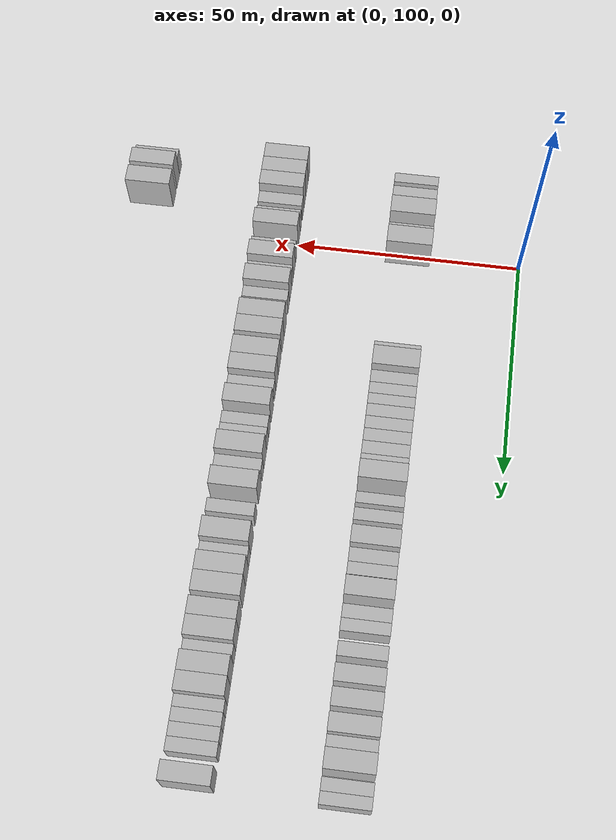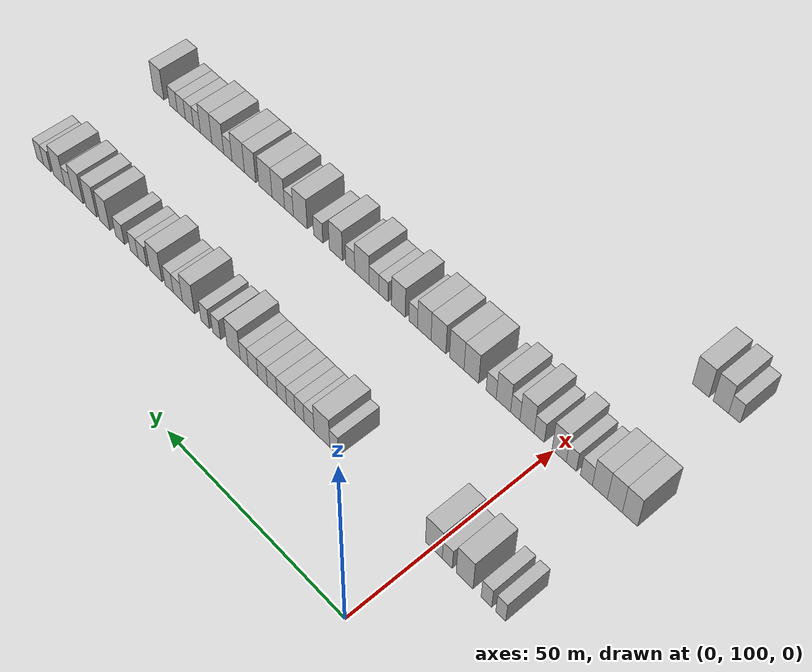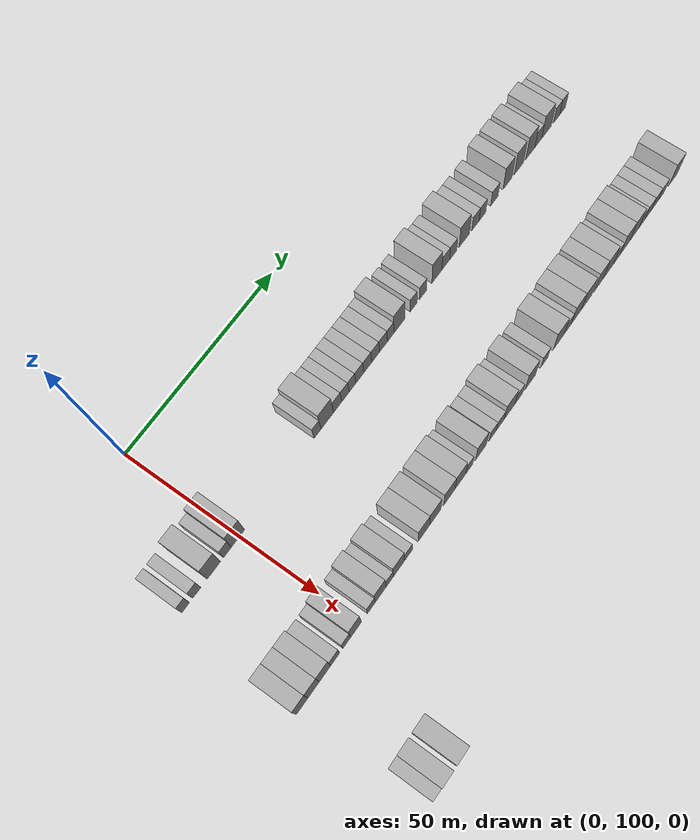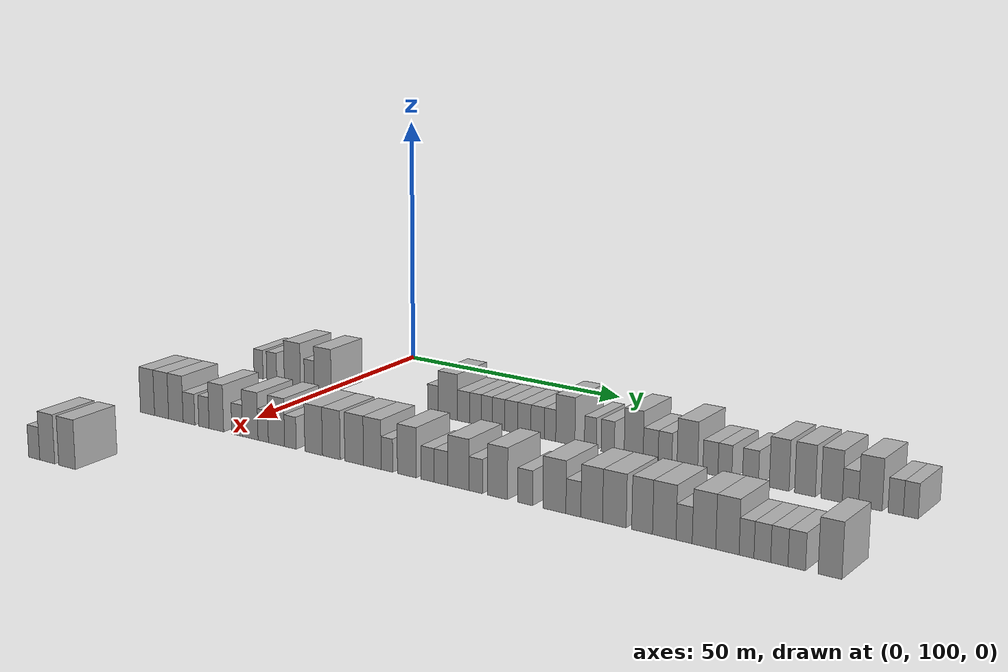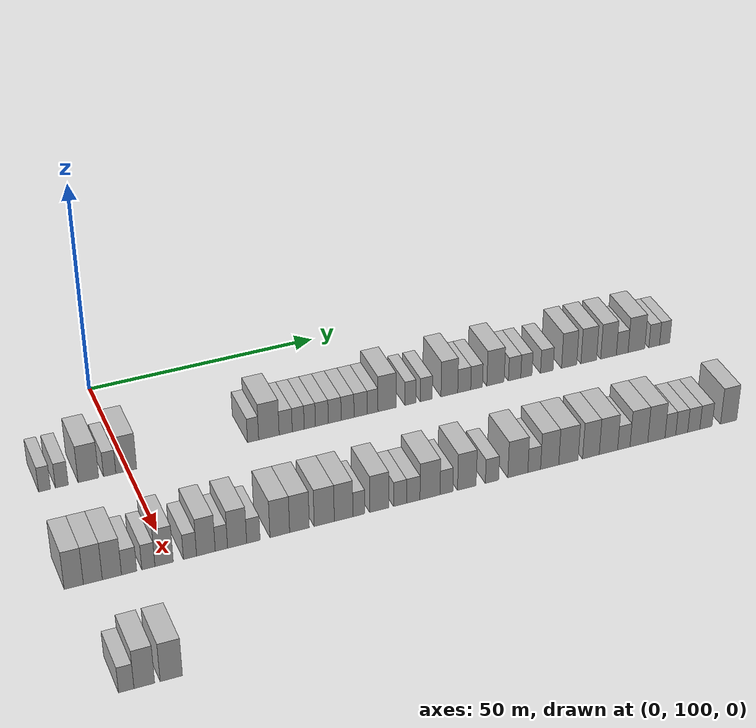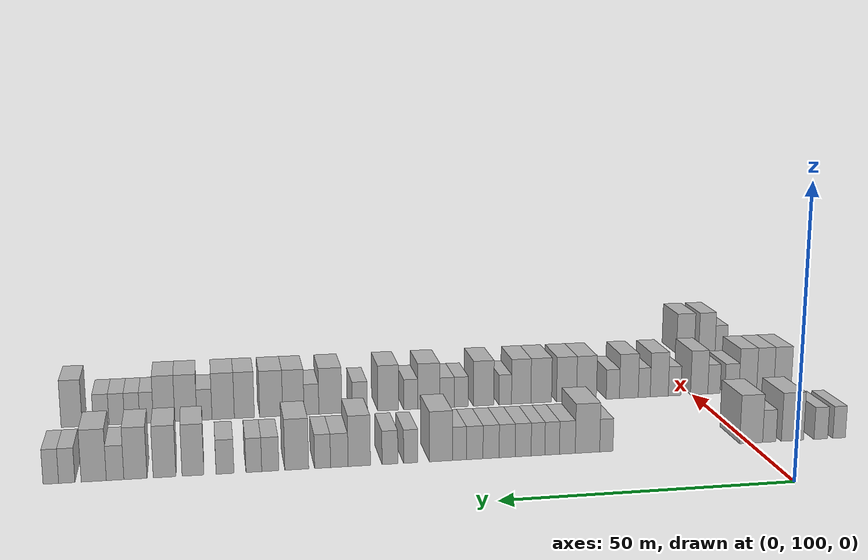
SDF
<sdf version="1.6">
 <world name="default">
  <model name="building_137">
   <static>1</static>
   <pose>25.0000 82.8842 0 0.000000 0.000000 0.000000</pose>
   <link name="link">
    <pose>0 0 3.00 0 0 0</pose>
    <collision name="collision"><geometry><box><size>10.0000 2.4114 6.0000</size></box></geometry></collision>
    <visual name="visual">
     <cast_shadows>0</cast_shadows>
     <geometry><box><size>10.0000 2.4114 6.0000</size></box></geometry>
     <material>
      <script>
       <uri>model://HANNAS_wall/materials/scripts</uri>
       <uri>model://HANNAS_wall/materials/textures</uri>
       <name>vrc/HANNAS_wall</name>
      </script>
     </material>
    </visual>
   </link>
  </model>
  <model name="building_138">
   <static>1</static>
   <pose>25.0000 86.3957 0 0.000000 0.000000 0.000000</pose>
   <link name="link">
    <pose>0 0 3.00 0 0 0</pose>
    <collision name="collision"><geometry><box><size>10.0000 2.6116 6.0000</size></box></geometry></collision>
    <visual name="visual">
     <cast_shadows>0</cast_shadows>
     <geometry><box><size>10.0000 2.6116 6.0000</size></box></geometry>
     <material>
      <script>
       <uri>model://HANNAS_wall/materials/scripts</uri>
       <uri>model://HANNAS_wall/materials/textures</uri>
       <name>vrc/HANNAS_wall</name>
      </script>
     </material>
    </visual>
   </link>
  </model>
  <model name="building_139">
   <static>1</static>
   <pose>25.0000 91.8095 0 0.000000 0.000000 0.000000</pose>
   <link name="link">
    <pose>0 0 4.50 0 0 0</pose>
    <collision name="collision"><geometry><box><size>10.0000 4.2160 9.0000</size></box></geometry></collision>
    <visual name="visual">
     <cast_shadows>0</cast_shadows>
     <geometry><box><size>10.0000 4.2160 9.0000</size></box></geometry>
     <material>
      <script>
       <uri>model://HANNAS_wall/materials/scripts</uri>
       <uri>model://HANNAS_wall/materials/textures</uri>
       <name>vrc/HANNAS_wall</name>
      </script>
     </material>
    </visual>
   </link>
  </model>
  <model name="building_140">
   <static>1</static>
   <pose>25.0000 96.1859 0 0.000000 0.000000 0.000000</pose>
   <link name="link">
    <pose>0 0 3.00 0 0 0</pose>
    <collision name="collision"><geometry><box><size>10.0000 2.5368 6.0000</size></box></geometry></collision>
    <visual name="visual">
     <cast_shadows>0</cast_shadows>
     <geometry><box><size>10.0000 2.5368 6.0000</size></box></geometry>
     <material>
      <script>
       <uri>model://HANNAS_wall/materials/scripts</uri>
       <uri>model://HANNAS_wall/materials/textures</uri>
       <name>vrc/HANNAS_wall</name>
      </script>
     </material>
    </visual>
   </link>
  </model>
  <model name="building_141">
   <static>1</static>
   <pose>25.0000 99.6122 0 0.000000 0.000000 0.000000</pose>
   <link name="link">
    <pose>0 0 4.50 0 0 0</pose>
    <collision name="collision"><geometry><box><size>10.0000 4.3158 9.0000</size></box></geometry></collision>
    <visual name="visual">
     <cast_shadows>0</cast_shadows>
     <geometry><box><size>10.0000 4.3158 9.0000</size></box></geometry>
     <material>
      <script>
       <uri>model://HANNAS_wall/materials/scripts</uri>
       <uri>model://HANNAS_wall/materials/textures</uri>
       <name>vrc/HANNAS_wall</name>
      </script>
     </material>
    </visual>
   </link>
  </model>
  <model name="building_142">
   <static>1</static>
   <pose>25.0000 126.3989 0 0.000000 0.000000 0.000000</pose>
   <link name="link">
    <pose>0 0 3.00 0 0 0</pose>
    <collision name="collision"><geometry><box><size>10.0000 2.4192 6.0000</size></box></geometry></collision>
    <visual name="visual">
     <cast_shadows>0</cast_shadows>
     <geometry><box><size>10.0000 2.4192 6.0000</size></box></geometry>
     <material>
      <script>
       <uri>model://HANNAS_wall/materials/scripts</uri>
       <uri>model://HANNAS_wall/materials/textures</uri>
       <name>vrc/HANNAS_wall</name>
      </script>
     </material>
    </visual>
   </link>
  </model>
  <model name="building_143">
   <static>1</static>
   <pose>25.0000 129.8212 0 0.000000 0.000000 0.000000</pose>
   <link name="link">
    <pose>0 0 4.50 0 0 0</pose>
    <collision name="collision"><geometry><box><size>10.0000 4.4254 9.0000</size></box></geometry></collision>
    <visual name="visual">
     <cast_shadows>0</cast_shadows>
     <geometry><box><size>10.0000 4.4254 9.0000</size></box></geometry>
     <material>
      <script>
       <uri>model://HANNAS_wall/materials/scripts</uri>
       <uri>model://HANNAS_wall/materials/textures</uri>
       <name>vrc/HANNAS_wall</name>
      </script>
     </material>
    </visual>
   </link>
  </model>
  <model name="building_144">
   <static>1</static>
   <pose>25.0000 133.4609 0 0.000000 0.000000 0.000000</pose>
   <link name="link">
    <pose>0 0 3.00 0 0 0</pose>
    <collision name="collision"><geometry><box><size>10.0000 2.8540 6.0000</size></box></geometry></collision>
    <visual name="visual">
     <cast_shadows>0</cast_shadows>
     <geometry><box><size>10.0000 2.8540 6.0000</size></box></geometry>
     <material>
      <script>
       <uri>model://HANNAS_wall/materials/scripts</uri>
       <uri>model://HANNAS_wall/materials/textures</uri>
       <name>vrc/HANNAS_wall</name>
      </script>
     </material>
    </visual>
   </link>
  </model>
  <model name="building_145">
   <static>1</static>
   <pose>25.0000 136.1914 0 0.000000 0.000000 0.000000</pose>
   <link name="link">
    <pose>0 0 3.00 0 0 0</pose>
    <collision name="collision"><geometry><box><size>10.0000 2.6069 6.0000</size></box></geometry></collision>
    <visual name="visual">
     <cast_shadows>0</cast_shadows>
     <geometry><box><size>10.0000 2.6069 6.0000</size></box></geometry>
     <material>
      <script>
       <uri>model://HANNAS_wall/materials/scripts</uri>
       <uri>model://HANNAS_wall/materials/textures</uri>
       <name>vrc/HANNAS_wall</name>
      </script>
     </material>
    </visual>
   </link>
  </model>
  <model name="building_146">
   <static>1</static>
   <pose>25.0000 138.7229 0 0.000000 0.000000 0.000000</pose>
   <link name="link">
    <pose>0 0 3.00 0 0 0</pose>
    <collision name="collision"><geometry><box><size>10.0000 2.4561 6.0000</size></box></geometry></collision>
    <visual name="visual">
     <cast_shadows>0</cast_shadows>
     <geometry><box><size>10.0000 2.4561 6.0000</size></box></geometry>
     <material>
      <script>
       <uri>model://HANNAS_wall/materials/scripts</uri>
       <uri>model://HANNAS_wall/materials/textures</uri>
       <name>vrc/HANNAS_wall</name>
      </script>
     </material>
    </visual>
   </link>
  </model>
  <model name="building_147">
   <static>1</static>
   <pose>25.0000 141.3669 0 0.000000 0.000000 0.000000</pose>
   <link name="link">
    <pose>0 0 3.00 0 0 0</pose>
    <collision name="collision"><geometry><box><size>10.0000 2.8319 6.0000</size></box></geometry></collision>
    <visual name="visual">
     <cast_shadows>0</cast_shadows>
     <geometry><box><size>10.0000 2.8319 6.0000</size></box></geometry>
     <material>
      <script>
       <uri>model://HANNAS_wall/materials/scripts</uri>
       <uri>model://HANNAS_wall/materials/textures</uri>
       <name>vrc/HANNAS_wall</name>
      </script>
     </material>
    </visual>
   </link>
  </model>
  <model name="building_148">
   <static>1</static>
   <pose>25.0000 144.2054 0 0.000000 0.000000 0.000000</pose>
   <link name="link">
    <pose>0 0 3.00 0 0 0</pose>
    <collision name="collision"><geometry><box><size>10.0000 2.8450 6.0000</size></box></geometry></collision>
    <visual name="visual">
     <cast_shadows>0</cast_shadows>
     <geometry><box><size>10.0000 2.8450 6.0000</size></box></geometry>
     <material>
      <script>
       <uri>model://HANNAS_wall/materials/scripts</uri>
       <uri>model://HANNAS_wall/materials/textures</uri>
       <name>vrc/HANNAS_wall</name>
      </script>
     </material>
    </visual>
   </link>
  </model>
  <model name="building_149">
   <static>1</static>
   <pose>25.0000 147.0546 0 0.000000 0.000000 0.000000</pose>
   <link name="link">
    <pose>0 0 3.00 0 0 0</pose>
    <collision name="collision"><geometry><box><size>10.0000 2.8535 6.0000</size></box></geometry></collision>
    <visual name="visual">
     <cast_shadows>0</cast_shadows>
     <geometry><box><size>10.0000 2.8535 6.0000</size></box></geometry>
     <material>
      <script>
       <uri>model://HANNAS_wall/materials/scripts</uri>
       <uri>model://HANNAS_wall/materials/textures</uri>
       <name>vrc/HANNAS_wall</name>
      </script>
     </material>
    </visual>
   </link>
  </model>
  <model name="building_150">
   <static>1</static>
   <pose>25.0000 149.9431 0 0.000000 0.000000 0.000000</pose>
   <link name="link">
    <pose>0 0 3.00 0 0 0</pose>
    <collision name="collision"><geometry><box><size>10.0000 2.9235 6.0000</size></box></geometry></collision>
    <visual name="visual">
     <cast_shadows>0</cast_shadows>
     <geometry><box><size>10.0000 2.9235 6.0000</size></box></geometry>
     <material>
      <script>
       <uri>model://HANNAS_wall/materials/scripts</uri>
       <uri>model://HANNAS_wall/materials/textures</uri>
       <name>vrc/HANNAS_wall</name>
      </script>
     </material>
    </visual>
   </link>
  </model>
  <model name="building_151">
   <static>1</static>
   <pose>25.0000 152.6162 0 0.000000 0.000000 0.000000</pose>
   <link name="link">
    <pose>0 0 3.00 0 0 0</pose>
    <collision name="collision"><geometry><box><size>10.0000 2.4228 6.0000</size></box></geometry></collision>
    <visual name="visual">
     <cast_shadows>0</cast_shadows>
     <geometry><box><size>10.0000 2.4228 6.0000</size></box></geometry>
     <material>
      <script>
       <uri>model://HANNAS_wall/materials/scripts</uri>
       <uri>model://HANNAS_wall/materials/textures</uri>
       <name>vrc/HANNAS_wall</name>
      </script>
     </material>
    </visual>
   </link>
  </model>
  <model name="building_152">
   <static>1</static>
   <pose>25.0000 155.8525 0 0.000000 0.000000 0.000000</pose>
   <link name="link">
    <pose>0 0 4.50 0 0 0</pose>
    <collision name="collision"><geometry><box><size>10.0000 4.0497 9.0000</size></box></geometry></collision>
    <visual name="visual">
     <cast_shadows>0</cast_shadows>
     <geometry><box><size>10.0000 4.0497 9.0000</size></box></geometry>
     <material>
      <script>
       <uri>model://HANNAS_wall/materials/scripts</uri>
       <uri>model://HANNAS_wall/materials/textures</uri>
       <name>vrc/HANNAS_wall</name>
      </script>
     </material>
    </visual>
   </link>
  </model>
  <model name="building_153">
   <static>1</static>
   <pose>25.0000 161.1162 0 0.000000 0.000000 0.000000</pose>
   <link name="link">
    <pose>0 0 3.00 0 0 0</pose>
    <collision name="collision"><geometry><box><size>10.0000 2.4779 6.0000</size></box></geometry></collision>
    <visual name="visual">
     <cast_shadows>0</cast_shadows>
     <geometry><box><size>10.0000 2.4779 6.0000</size></box></geometry>
     <material>
      <script>
       <uri>model://HANNAS_wall/materials/scripts</uri>
       <uri>model://HANNAS_wall/materials/textures</uri>
       <name>vrc/HANNAS_wall</name>
      </script>
     </material>
    </visual>
   </link>
  </model>
  <model name="building_154">
   <static>1</static>
   <pose>25.0000 164.7132 0 0.000000 0.000000 0.000000</pose>
   <link name="link">
    <pose>0 0 3.00 0 0 0</pose>
    <collision name="collision"><geometry><box><size>10.0000 2.7159 6.0000</size></box></geometry></collision>
    <visual name="visual">
     <cast_shadows>0</cast_shadows>
     <geometry><box><size>10.0000 2.7159 6.0000</size></box></geometry>
     <material>
      <script>
       <uri>model://HANNAS_wall/materials/scripts</uri>
       <uri>model://HANNAS_wall/materials/textures</uri>
       <name>vrc/HANNAS_wall</name>
      </script>
     </material>
    </visual>
   </link>
  </model>
  <model name="building_155">
   <static>1</static>
   <pose>25.0000 169.9870 0 0.000000 0.000000 0.000000</pose>
   <link name="link">
    <pose>0 0 4.50 0 0 0</pose>
    <collision name="collision"><geometry><box><size>10.0000 3.8317 9.0000</size></box></geometry></collision>
    <visual name="visual">
     <cast_shadows>0</cast_shadows>
     <geometry><box><size>10.0000 3.8317 9.0000</size></box></geometry>
     <material>
      <script>
       <uri>model://HANNAS_wall/materials/scripts</uri>
       <uri>model://HANNAS_wall/materials/textures</uri>
       <name>vrc/HANNAS_wall</name>
      </script>
     </material>
    </visual>
   </link>
  </model>
  <model name="building_156">
   <static>1</static>
   <pose>25.0000 173.3988 0 0.000000 0.000000 0.000000</pose>
   <link name="link">
    <pose>0 0 3.00 0 0 0</pose>
    <collision name="collision"><geometry><box><size>10.0000 2.9920 6.0000</size></box></geometry></collision>
    <visual name="visual">
     <cast_shadows>0</cast_shadows>
     <geometry><box><size>10.0000 2.9920 6.0000</size></box></geometry>
     <material>
      <script>
       <uri>model://HANNAS_wall/materials/scripts</uri>
       <uri>model://HANNAS_wall/materials/textures</uri>
       <name>vrc/HANNAS_wall</name>
      </script>
     </material>
    </visual>
   </link>
  </model>
  <model name="building_157">
   <static>1</static>
   <pose>25.0000 176.2500 0 0.000000 0.000000 0.000000</pose>
   <link name="link">
    <pose>0 0 3.00 0 0 0</pose>
    <collision name="collision"><geometry><box><size>10.0000 2.7104 6.0000</size></box></geometry></collision>
    <visual name="visual">
     <cast_shadows>0</cast_shadows>
     <geometry><box><size>10.0000 2.7104 6.0000</size></box></geometry>
     <material>
      <script>
       <uri>model://HANNAS_wall/materials/scripts</uri>
       <uri>model://HANNAS_wall/materials/textures</uri>
       <name>vrc/HANNAS_wall</name>
      </script>
     </material>
    </visual>
   </link>
  </model>
  <model name="building_158">
   <static>1</static>
   <pose>25.0000 180.6193 0 0.000000 0.000000 0.000000</pose>
   <link name="link">
    <pose>0 0 4.50 0 0 0</pose>
    <collision name="collision"><geometry><box><size>10.0000 4.0283 9.0000</size></box></geometry></collision>
    <visual name="visual">
     <cast_shadows>0</cast_shadows>
     <geometry><box><size>10.0000 4.0283 9.0000</size></box></geometry>
     <material>
      <script>
       <uri>model://HANNAS_wall/materials/scripts</uri>
       <uri>model://HANNAS_wall/materials/textures</uri>
       <name>vrc/HANNAS_wall</name>
      </script>
     </material>
    </visual>
   </link>
  </model>
  <model name="building_159">
   <static>1</static>
   <pose>25.0000 185.0772 0 0.000000 0.000000 0.000000</pose>
   <link name="link">
    <pose>0 0 3.00 0 0 0</pose>
    <collision name="collision"><geometry><box><size>10.0000 2.8874 6.0000</size></box></geometry></collision>
    <visual name="visual">
     <cast_shadows>0</cast_shadows>
     <geometry><box><size>10.0000 2.8874 6.0000</size></box></geometry>
     <material>
      <script>
       <uri>model://HANNAS_wall/materials/scripts</uri>
       <uri>model://HANNAS_wall/materials/textures</uri>
       <name>vrc/HANNAS_wall</name>
      </script>
     </material>
    </visual>
   </link>
  </model>
  <model name="building_160">
   <static>1</static>
   <pose>25.0000 187.8371 0 0.000000 0.000000 0.000000</pose>
   <link name="link">
    <pose>0 0 3.00 0 0 0</pose>
    <collision name="collision"><geometry><box><size>10.0000 2.6324 6.0000</size></box></geometry></collision>
    <visual name="visual">
     <cast_shadows>0</cast_shadows>
     <geometry><box><size>10.0000 2.6324 6.0000</size></box></geometry>
     <material>
      <script>
       <uri>model://HANNAS_wall/materials/scripts</uri>
       <uri>model://HANNAS_wall/materials/textures</uri>
       <name>vrc/HANNAS_wall</name>
      </script>
     </material>
    </visual>
   </link>
  </model>
  <model name="building_161">
   <static>1</static>
   <pose>25.0000 192.6444 0 0.000000 0.000000 0.000000</pose>
   <link name="link">
    <pose>0 0 3.00 0 0 0</pose>
    <collision name="collision"><geometry><box><size>10.0000 2.9821 6.0000</size></box></geometry></collision>
    <visual name="visual">
     <cast_shadows>0</cast_shadows>
     <geometry><box><size>10.0000 2.9821 6.0000</size></box></geometry>
     <material>
      <script>
       <uri>model://HANNAS_wall/materials/scripts</uri>
       <uri>model://HANNAS_wall/materials/textures</uri>
       <name>vrc/HANNAS_wall</name>
      </script>
     </material>
    </visual>
   </link>
  </model>
  <model name="building_162">
   <static>1</static>
   <pose>25.0000 197.9433 0 0.000000 0.000000 0.000000</pose>
   <link name="link">
    <pose>0 0 4.50 0 0 0</pose>
    <collision name="collision"><geometry><box><size>10.0000 3.6157 9.0000</size></box></geometry></collision>
    <visual name="visual">
     <cast_shadows>0</cast_shadows>
     <geometry><box><size>10.0000 3.6157 9.0000</size></box></geometry>
     <material>
      <script>
       <uri>model://HANNAS_wall/materials/scripts</uri>
       <uri>model://HANNAS_wall/materials/textures</uri>
       <name>vrc/HANNAS_wall</name>
      </script>
     </material>
    </visual>
   </link>
  </model>
  <model name="building_163">
   <static>1</static>
   <pose>25.0000 202.6196 0 0.000000 0.000000 0.000000</pose>
   <link name="link">
    <pose>0 0 4.50 0 0 0</pose>
    <collision name="collision"><geometry><box><size>10.0000 3.7369 9.0000</size></box></geometry></collision>
    <visual name="visual">
     <cast_shadows>0</cast_shadows>
     <geometry><box><size>10.0000 3.7369 9.0000</size></box></geometry>
     <material>
      <script>
       <uri>model://HANNAS_wall/materials/scripts</uri>
       <uri>model://HANNAS_wall/materials/textures</uri>
       <name>vrc/HANNAS_wall</name>
      </script>
     </material>
    </visual>
   </link>
  </model>
  <model name="building_164">
   <static>1</static>
   <pose>25.0000 207.3731 0 0.000000 0.000000 0.000000</pose>
   <link name="link">
    <pose>0 0 4.50 0 0 0</pose>
    <collision name="collision"><geometry><box><size>10.0000 3.7702 9.0000</size></box></geometry></collision>
    <visual name="visual">
     <cast_shadows>0</cast_shadows>
     <geometry><box><size>10.0000 3.7702 9.0000</size></box></geometry>
     <material>
      <script>
       <uri>model://HANNAS_wall/materials/scripts</uri>
       <uri>model://HANNAS_wall/materials/textures</uri>
       <name>vrc/HANNAS_wall</name>
      </script>
     </material>
    </visual>
   </link>
  </model>
  <model name="building_165">
   <static>1</static>
   <pose>25.0000 210.6785 0 0.000000 0.000000 0.000000</pose>
   <link name="link">
    <pose>0 0 3.00 0 0 0</pose>
    <collision name="collision"><geometry><box><size>10.0000 2.8407 6.0000</size></box></geometry></collision>
    <visual name="visual">
     <cast_shadows>0</cast_shadows>
     <geometry><box><size>10.0000 2.8407 6.0000</size></box></geometry>
     <material>
      <script>
       <uri>model://HANNAS_wall/materials/scripts</uri>
       <uri>model://HANNAS_wall/materials/textures</uri>
       <name>vrc/HANNAS_wall</name>
      </script>
     </material>
    </visual>
   </link>
  </model>
  <model name="building_166">
   <static>1</static>
   <pose>25.0000 214.1298 0 0.000000 0.000000 0.000000</pose>
   <link name="link">
    <pose>0 0 4.50 0 0 0</pose>
    <collision name="collision"><geometry><box><size>10.0000 4.0618 9.0000</size></box></geometry></collision>
    <visual name="visual">
     <cast_shadows>0</cast_shadows>
     <geometry><box><size>10.0000 4.0618 9.0000</size></box></geometry>
     <material>
      <script>
       <uri>model://HANNAS_wall/materials/scripts</uri>
       <uri>model://HANNAS_wall/materials/textures</uri>
       <name>vrc/HANNAS_wall</name>
      </script>
     </material>
    </visual>
   </link>
  </model>
  <model name="building_167">
   <static>1</static>
   <pose>25.0000 218.4650 0 0.000000 0.000000 0.000000</pose>
   <link name="link">
    <pose>0 0 3.00 0 0 0</pose>
    <collision name="collision"><geometry><box><size>10.0000 2.6085 6.0000</size></box></geometry></collision>
    <visual name="visual">
     <cast_shadows>0</cast_shadows>
     <geometry><box><size>10.0000 2.6085 6.0000</size></box></geometry>
     <material>
      <script>
       <uri>model://HANNAS_wall/materials/scripts</uri>
       <uri>model://HANNAS_wall/materials/textures</uri>
       <name>vrc/HANNAS_wall</name>
      </script>
     </material>
    </visual>
   </link>
  </model>
  <model name="building_168">
   <static>1</static>
   <pose>25.0000 221.0162 0 0.000000 0.000000 0.000000</pose>
   <link name="link">
    <pose>0 0 3.00 0 0 0</pose>
    <collision name="collision"><geometry><box><size>10.0000 2.4938 6.0000</size></box></geometry></collision>
    <visual name="visual">
     <cast_shadows>0</cast_shadows>
     <geometry><box><size>10.0000 2.4938 6.0000</size></box></geometry>
     <material>
      <script>
       <uri>model://HANNAS_wall/materials/scripts</uri>
       <uri>model://HANNAS_wall/materials/textures</uri>
       <name>vrc/HANNAS_wall</name>
      </script>
     </material>
    </visual>
   </link>
  </model>
  <model name="building_349">
   <static>1</static>
   <pose>55.0000 81.0897 0 0.000000 0.000000 0.000000</pose>
   <link name="link">
    <pose>0 0 4.50 0 0 0</pose>
    <collision name="collision"><geometry><box><size>10.0000 3.6883 9.0000</size></box></geometry></collision>
    <visual name="visual">
     <cast_shadows>0</cast_shadows>
     <geometry><box><size>10.0000 3.6883 9.0000</size></box></geometry>
     <material>
      <script>
       <uri>model://HANNAS_wall/materials/scripts</uri>
       <uri>model://HANNAS_wall/materials/textures</uri>
       <name>vrc/HANNAS_wall</name>
      </script>
     </material>
    </visual>
   </link>
  </model>
  <model name="building_350">
   <static>1</static>
   <pose>55.0000 84.7570 0 0.000000 0.000000 0.000000</pose>
   <link name="link">
    <pose>0 0 4.50 0 0 0</pose>
    <collision name="collision"><geometry><box><size>10.0000 3.6463 9.0000</size></box></geometry></collision>
    <visual name="visual">
     <cast_shadows>0</cast_shadows>
     <geometry><box><size>10.0000 3.6463 9.0000</size></box></geometry>
     <material>
      <script>
       <uri>model://HANNAS_wall/materials/scripts</uri>
       <uri>model://HANNAS_wall/materials/textures</uri>
       <name>vrc/HANNAS_wall</name>
      </script>
     </material>
    </visual>
   </link>
  </model>
  <model name="building_351">
   <static>1</static>
   <pose>55.0000 88.4373 0 0.000000 0.000000 0.000000</pose>
   <link name="link">
    <pose>0 0 4.50 0 0 0</pose>
    <collision name="collision"><geometry><box><size>10.0000 3.7143 9.0000</size></box></geometry></collision>
    <visual name="visual">
     <cast_shadows>0</cast_shadows>
     <geometry><box><size>10.0000 3.7143 9.0000</size></box></geometry>
     <material>
      <script>
       <uri>model://HANNAS_wall/materials/scripts</uri>
       <uri>model://HANNAS_wall/materials/textures</uri>
       <name>vrc/HANNAS_wall</name>
      </script>
     </material>
    </visual>
   </link>
  </model>
  <model name="building_352">
   <static>1</static>
   <pose>55.0000 91.7743 0 0.000000 0.000000 0.000000</pose>
   <link name="link">
    <pose>0 0 3.00 0 0 0</pose>
    <collision name="collision"><geometry><box><size>10.0000 2.9596 6.0000</size></box></geometry></collision>
    <visual name="visual">
     <cast_shadows>0</cast_shadows>
     <geometry><box><size>10.0000 2.9596 6.0000</size></box></geometry>
     <material>
      <script>
       <uri>model://HANNAS_wall/materials/scripts</uri>
       <uri>model://HANNAS_wall/materials/textures</uri>
       <name>vrc/HANNAS_wall</name>
      </script>
     </material>
    </visual>
   </link>
  </model>
  <model name="building_353">
   <static>1</static>
   <pose>55.0000 95.5387 0 0.000000 0.000000 0.000000</pose>
   <link name="link">
    <pose>0 0 3.00 0 0 0</pose>
    <collision name="collision"><geometry><box><size>10.0000 2.5691 6.0000</size></box></geometry></collision>
    <visual name="visual">
     <cast_shadows>0</cast_shadows>
     <geometry><box><size>10.0000 2.5691 6.0000</size></box></geometry>
     <material>
      <script>
       <uri>model://HANNAS_wall/materials/scripts</uri>
       <uri>model://HANNAS_wall/materials/textures</uri>
       <name>vrc/HANNAS_wall</name>
      </script>
     </material>
    </visual>
   </link>
  </model>
  <model name="building_354">
   <static>1</static>
   <pose>55.0000 98.6256 0 0.000000 0.000000 0.000000</pose>
   <link name="link">
    <pose>0 0 4.50 0 0 0</pose>
    <collision name="collision"><geometry><box><size>10.0000 3.6046 9.0000</size></box></geometry></collision>
    <visual name="visual">
     <cast_shadows>0</cast_shadows>
     <geometry><box><size>10.0000 3.6046 9.0000</size></box></geometry>
     <material>
      <script>
       <uri>model://HANNAS_wall/materials/scripts</uri>
       <uri>model://HANNAS_wall/materials/textures</uri>
       <name>vrc/HANNAS_wall</name>
      </script>
     </material>
    </visual>
   </link>
  </model>
  <model name="building_355">
   <static>1</static>
   <pose>55.0000 103.7343 0 0.000000 0.000000 0.000000</pose>
   <link name="link">
    <pose>0 0 3.00 0 0 0</pose>
    <collision name="collision"><geometry><box><size>10.0000 2.6128 6.0000</size></box></geometry></collision>
    <visual name="visual">
     <cast_shadows>0</cast_shadows>
     <geometry><box><size>10.0000 2.6128 6.0000</size></box></geometry>
     <material>
      <script>
       <uri>model://HANNAS_wall/materials/scripts</uri>
       <uri>model://HANNAS_wall/materials/textures</uri>
       <name>vrc/HANNAS_wall</name>
      </script>
     </material>
    </visual>
   </link>
  </model>
  <model name="building_356">
   <static>1</static>
   <pose>55.0000 106.9027 0 0.000000 0.000000 0.000000</pose>
   <link name="link">
    <pose>0 0 4.50 0 0 0</pose>
    <collision name="collision"><geometry><box><size>10.0000 3.7242 9.0000</size></box></geometry></collision>
    <visual name="visual">
     <cast_shadows>0</cast_shadows>
     <geometry><box><size>10.0000 3.7242 9.0000</size></box></geometry>
     <material>
      <script>
       <uri>model://HANNAS_wall/materials/scripts</uri>
       <uri>model://HANNAS_wall/materials/textures</uri>
       <name>vrc/HANNAS_wall</name>
      </script>
     </material>
    </visual>
   </link>
  </model>
  <model name="building_357">
   <static>1</static>
   <pose>55.0000 109.9978 0 0.000000 0.000000 0.000000</pose>
   <link name="link">
    <pose>0 0 3.00 0 0 0</pose>
    <collision name="collision"><geometry><box><size>10.0000 2.4659 6.0000</size></box></geometry></collision>
    <visual name="visual">
     <cast_shadows>0</cast_shadows>
     <geometry><box><size>10.0000 2.4659 6.0000</size></box></geometry>
     <material>
      <script>
       <uri>model://HANNAS_wall/materials/scripts</uri>
       <uri>model://HANNAS_wall/materials/textures</uri>
       <name>vrc/HANNAS_wall</name>
      </script>
     </material>
    </visual>
   </link>
  </model>
  <model name="building_358">
   <static>1</static>
   <pose>55.0000 113.1546 0 0.000000 0.000000 0.000000</pose>
   <link name="link">
    <pose>0 0 4.50 0 0 0</pose>
    <collision name="collision"><geometry><box><size>10.0000 3.8476 9.0000</size></box></geometry></collision>
    <visual name="visual">
     <cast_shadows>0</cast_shadows>
     <geometry><box><size>10.0000 3.8476 9.0000</size></box></geometry>
     <material>
      <script>
       <uri>model://HANNAS_wall/materials/scripts</uri>
       <uri>model://HANNAS_wall/materials/textures</uri>
       <name>vrc/HANNAS_wall</name>
      </script>
     </material>
    </visual>
   </link>
  </model>
  <model name="building_359">
   <static>1</static>
   <pose>55.0000 116.4294 0 0.000000 0.000000 0.000000</pose>
   <link name="link">
    <pose>0 0 3.00 0 0 0</pose>
    <collision name="collision"><geometry><box><size>10.0000 2.7019 6.0000</size></box></geometry></collision>
    <visual name="visual">
     <cast_shadows>0</cast_shadows>
     <geometry><box><size>10.0000 2.7019 6.0000</size></box></geometry>
     <material>
      <script>
       <uri>model://HANNAS_wall/materials/scripts</uri>
       <uri>model://HANNAS_wall/materials/textures</uri>
       <name>vrc/HANNAS_wall</name>
      </script>
     </material>
    </visual>
   </link>
  </model>
  <model name="building_360">
   <static>1</static>
   <pose>55.0000 121.7904 0 0.000000 0.000000 0.000000</pose>
   <link name="link">
    <pose>0 0 4.50 0 0 0</pose>
    <collision name="collision"><geometry><box><size>10.0000 4.0202 9.0000</size></box></geometry></collision>
    <visual name="visual">
     <cast_shadows>0</cast_shadows>
     <geometry><box><size>10.0000 4.0202 9.0000</size></box></geometry>
     <material>
      <script>
       <uri>model://HANNAS_wall/materials/scripts</uri>
       <uri>model://HANNAS_wall/materials/textures</uri>
       <name>vrc/HANNAS_wall</name>
      </script>
     </material>
    </visual>
   </link>
  </model>
  <model name="building_361">
   <static>1</static>
   <pose>55.0000 125.8162 0 0.000000 0.000000 0.000000</pose>
   <link name="link">
    <pose>0 0 4.50 0 0 0</pose>
    <collision name="collision"><geometry><box><size>10.0000 4.0314 9.0000</size></box></geometry></collision>
    <visual name="visual">
     <cast_shadows>0</cast_shadows>
     <geometry><box><size>10.0000 4.0314 9.0000</size></box></geometry>
     <material>
      <script>
       <uri>model://HANNAS_wall/materials/scripts</uri>
       <uri>model://HANNAS_wall/materials/textures</uri>
       <name>vrc/HANNAS_wall</name>
      </script>
     </material>
    </visual>
   </link>
  </model>
  <model name="building_362">
   <static>1</static>
   <pose>55.0000 130.9107 0 0.000000 0.000000 0.000000</pose>
   <link name="link">
    <pose>0 0 4.50 0 0 0</pose>
    <collision name="collision"><geometry><box><size>10.0000 4.1577 9.0000</size></box></geometry></collision>
    <visual name="visual">
     <cast_shadows>0</cast_shadows>
     <geometry><box><size>10.0000 4.1577 9.0000</size></box></geometry>
     <material>
      <script>
       <uri>model://HANNAS_wall/materials/scripts</uri>
       <uri>model://HANNAS_wall/materials/textures</uri>
       <name>vrc/HANNAS_wall</name>
      </script>
     </material>
    </visual>
   </link>
  </model>
  <model name="building_363">
   <static>1</static>
   <pose>55.0000 134.9225 0 0.000000 0.000000 0.000000</pose>
   <link name="link">
    <pose>0 0 4.50 0 0 0</pose>
    <collision name="collision"><geometry><box><size>10.0000 3.8658 9.0000</size></box></geometry></collision>
    <visual name="visual">
     <cast_shadows>0</cast_shadows>
     <geometry><box><size>10.0000 3.8658 9.0000</size></box></geometry>
     <material>
      <script>
       <uri>model://HANNAS_wall/materials/scripts</uri>
       <uri>model://HANNAS_wall/materials/textures</uri>
       <name>vrc/HANNAS_wall</name>
      </script>
     </material>
    </visual>
   </link>
  </model>
  <model name="building_364">
   <static>1</static>
   <pose>55.0000 138.1067 0 0.000000 0.000000 0.000000</pose>
   <link name="link">
    <pose>0 0 3.00 0 0 0</pose>
    <collision name="collision"><geometry><box><size>10.0000 2.5026 6.0000</size></box></geometry></collision>
    <visual name="visual">
     <cast_shadows>0</cast_shadows>
     <geometry><box><size>10.0000 2.5026 6.0000</size></box></geometry>
     <material>
      <script>
       <uri>model://HANNAS_wall/materials/scripts</uri>
       <uri>model://HANNAS_wall/materials/textures</uri>
       <name>vrc/HANNAS_wall</name>
      </script>
     </material>
    </visual>
   </link>
  </model>
  <model name="building_365">
   <static>1</static>
   <pose>55.0000 142.3680 0 0.000000 0.000000 0.000000</pose>
   <link name="link">
    <pose>0 0 4.50 0 0 0</pose>
    <collision name="collision"><geometry><box><size>10.0000 4.0201 9.0000</size></box></geometry></collision>
    <visual name="visual">
     <cast_shadows>0</cast_shadows>
     <geometry><box><size>10.0000 4.0201 9.0000</size></box></geometry>
     <material>
      <script>
       <uri>model://HANNAS_wall/materials/scripts</uri>
       <uri>model://HANNAS_wall/materials/textures</uri>
       <name>vrc/HANNAS_wall</name>
      </script>
     </material>
    </visual>
   </link>
  </model>
  <model name="building_366">
   <static>1</static>
   <pose>55.0000 146.7507 0 0.000000 0.000000 0.000000</pose>
   <link name="link">
    <pose>0 0 3.00 0 0 0</pose>
    <collision name="collision"><geometry><box><size>10.0000 2.7452 6.0000</size></box></geometry></collision>
    <visual name="visual">
     <cast_shadows>0</cast_shadows>
     <geometry><box><size>10.0000 2.7452 6.0000</size></box></geometry>
     <material>
      <script>
       <uri>model://HANNAS_wall/materials/scripts</uri>
       <uri>model://HANNAS_wall/materials/textures</uri>
       <name>vrc/HANNAS_wall</name>
      </script>
     </material>
    </visual>
   </link>
  </model>
  <model name="building_367">
   <static>1</static>
   <pose>55.0000 149.5549 0 0.000000 0.000000 0.000000</pose>
   <link name="link">
    <pose>0 0 3.00 0 0 0</pose>
    <collision name="collision"><geometry><box><size>10.0000 2.8631 6.0000</size></box></geometry></collision>
    <visual name="visual">
     <cast_shadows>0</cast_shadows>
     <geometry><box><size>10.0000 2.8631 6.0000</size></box></geometry>
     <material>
      <script>
       <uri>model://HANNAS_wall/materials/scripts</uri>
       <uri>model://HANNAS_wall/materials/textures</uri>
       <name>vrc/HANNAS_wall</name>
      </script>
     </material>
    </visual>
   </link>
  </model>
  <model name="building_368">
   <static>1</static>
   <pose>55.0000 153.1295 0 0.000000 0.000000 0.000000</pose>
   <link name="link">
    <pose>0 0 4.50 0 0 0</pose>
    <collision name="collision"><geometry><box><size>10.0000 4.2862 9.0000</size></box></geometry></collision>
    <visual name="visual">
     <cast_shadows>0</cast_shadows>
     <geometry><box><size>10.0000 4.2862 9.0000</size></box></geometry>
     <material>
      <script>
       <uri>model://HANNAS_wall/materials/scripts</uri>
       <uri>model://HANNAS_wall/materials/textures</uri>
       <name>vrc/HANNAS_wall</name>
      </script>
     </material>
    </visual>
   </link>
  </model>
  <model name="building_369">
   <static>1</static>
   <pose>55.0000 156.6500 0 0.000000 0.000000 0.000000</pose>
   <link name="link">
    <pose>0 0 3.00 0 0 0</pose>
    <collision name="collision"><geometry><box><size>10.0000 2.7548 6.0000</size></box></geometry></collision>
    <visual name="visual">
     <cast_shadows>0</cast_shadows>
     <geometry><box><size>10.0000 2.7548 6.0000</size></box></geometry>
     <material>
      <script>
       <uri>model://HANNAS_wall/materials/scripts</uri>
       <uri>model://HANNAS_wall/materials/textures</uri>
       <name>vrc/HANNAS_wall</name>
      </script>
     </material>
    </visual>
   </link>
  </model>
  <model name="building_370">
   <static>1</static>
   <pose>55.0000 161.0383 0 0.000000 0.000000 0.000000</pose>
   <link name="link">
    <pose>0 0 4.50 0 0 0</pose>
    <collision name="collision"><geometry><box><size>10.0000 4.0218 9.0000</size></box></geometry></collision>
    <visual name="visual">
     <cast_shadows>0</cast_shadows>
     <geometry><box><size>10.0000 4.0218 9.0000</size></box></geometry>
     <material>
      <script>
       <uri>model://HANNAS_wall/materials/scripts</uri>
       <uri>model://HANNAS_wall/materials/textures</uri>
       <name>vrc/HANNAS_wall</name>
      </script>
     </material>
    </visual>
   </link>
  </model>
  <model name="building_371">
   <static>1</static>
   <pose>55.0000 166.5003 0 0.000000 0.000000 0.000000</pose>
   <link name="link">
    <pose>0 0 3.00 0 0 0</pose>
    <collision name="collision"><geometry><box><size>10.0000 2.9022 6.0000</size></box></geometry></collision>
    <visual name="visual">
     <cast_shadows>0</cast_shadows>
     <geometry><box><size>10.0000 2.9022 6.0000</size></box></geometry>
     <material>
      <script>
       <uri>model://HANNAS_wall/materials/scripts</uri>
       <uri>model://HANNAS_wall/materials/textures</uri>
       <name>vrc/HANNAS_wall</name>
      </script>
     </material>
    </visual>
   </link>
  </model>
  <model name="building_372">
   <static>1</static>
   <pose>55.0000 172.1459 0 0.000000 0.000000 0.000000</pose>
   <link name="link">
    <pose>0 0 4.50 0 0 0</pose>
    <collision name="collision"><geometry><box><size>10.0000 4.3890 9.0000</size></box></geometry></collision>
    <visual name="visual">
     <cast_shadows>0</cast_shadows>
     <geometry><box><size>10.0000 4.3890 9.0000</size></box></geometry>
     <material>
      <script>
       <uri>model://HANNAS_wall/materials/scripts</uri>
       <uri>model://HANNAS_wall/materials/textures</uri>
       <name>vrc/HANNAS_wall</name>
      </script>
     </material>
    </visual>
   </link>
  </model>
  <model name="building_373">
   <static>1</static>
   <pose>55.0000 175.7489 0 0.000000 0.000000 0.000000</pose>
   <link name="link">
    <pose>0 0 3.00 0 0 0</pose>
    <collision name="collision"><geometry><box><size>10.0000 2.8170 6.0000</size></box></geometry></collision>
    <visual name="visual">
     <cast_shadows>0</cast_shadows>
     <geometry><box><size>10.0000 2.8170 6.0000</size></box></geometry>
     <material>
      <script>
       <uri>model://HANNAS_wall/materials/scripts</uri>
       <uri>model://HANNAS_wall/materials/textures</uri>
       <name>vrc/HANNAS_wall</name>
      </script>
     </material>
    </visual>
   </link>
  </model>
  <model name="building_374">
   <static>1</static>
   <pose>55.0000 179.1758 0 0.000000 0.000000 0.000000</pose>
   <link name="link">
    <pose>0 0 4.50 0 0 0</pose>
    <collision name="collision"><geometry><box><size>10.0000 4.0369 9.0000</size></box></geometry></collision>
    <visual name="visual">
     <cast_shadows>0</cast_shadows>
     <geometry><box><size>10.0000 4.0369 9.0000</size></box></geometry>
     <material>
      <script>
       <uri>model://HANNAS_wall/materials/scripts</uri>
       <uri>model://HANNAS_wall/materials/textures</uri>
       <name>vrc/HANNAS_wall</name>
      </script>
     </material>
    </visual>
   </link>
  </model>
  <model name="building_375">
   <static>1</static>
   <pose>55.0000 183.3598 0 0.000000 0.000000 0.000000</pose>
   <link name="link">
    <pose>0 0 4.50 0 0 0</pose>
    <collision name="collision"><geometry><box><size>10.0000 4.3311 9.0000</size></box></geometry></collision>
    <visual name="visual">
     <cast_shadows>0</cast_shadows>
     <geometry><box><size>10.0000 4.3311 9.0000</size></box></geometry>
     <material>
      <script>
       <uri>model://HANNAS_wall/materials/scripts</uri>
       <uri>model://HANNAS_wall/materials/textures</uri>
       <name>vrc/HANNAS_wall</name>
      </script>
     </material>
    </visual>
   </link>
  </model>
  <model name="building_376">
   <static>1</static>
   <pose>55.0000 188.3978 0 0.000000 0.000000 0.000000</pose>
   <link name="link">
    <pose>0 0 4.50 0 0 0</pose>
    <collision name="collision"><geometry><box><size>10.0000 3.7451 9.0000</size></box></geometry></collision>
    <visual name="visual">
     <cast_shadows>0</cast_shadows>
     <geometry><box><size>10.0000 3.7451 9.0000</size></box></geometry>
     <material>
      <script>
       <uri>model://HANNAS_wall/materials/scripts</uri>
       <uri>model://HANNAS_wall/materials/textures</uri>
       <name>vrc/HANNAS_wall</name>
      </script>
     </material>
    </visual>
   </link>
  </model>
  <model name="building_377">
   <static>1</static>
   <pose>55.0000 192.3502 0 0.000000 0.000000 0.000000</pose>
   <link name="link">
    <pose>0 0 4.50 0 0 0</pose>
    <collision name="collision"><geometry><box><size>10.0000 4.1596 9.0000</size></box></geometry></collision>
    <visual name="visual">
     <cast_shadows>0</cast_shadows>
     <geometry><box><size>10.0000 4.1596 9.0000</size></box></geometry>
     <material>
      <script>
       <uri>model://HANNAS_wall/materials/scripts</uri>
       <uri>model://HANNAS_wall/materials/textures</uri>
       <name>vrc/HANNAS_wall</name>
      </script>
     </material>
    </visual>
   </link>
  </model>
  <model name="building_378">
   <static>1</static>
   <pose>55.0000 195.8389 0 0.000000 0.000000 0.000000</pose>
   <link name="link">
    <pose>0 0 3.00 0 0 0</pose>
    <collision name="collision"><geometry><box><size>10.0000 2.8178 6.0000</size></box></geometry></collision>
    <visual name="visual">
     <cast_shadows>0</cast_shadows>
     <geometry><box><size>10.0000 2.8178 6.0000</size></box></geometry>
     <material>
      <script>
       <uri>model://HANNAS_wall/materials/scripts</uri>
       <uri>model://HANNAS_wall/materials/textures</uri>
       <name>vrc/HANNAS_wall</name>
      </script>
     </material>
    </visual>
   </link>
  </model>
  <model name="building_379">
   <static>1</static>
   <pose>55.0000 199.2764 0 0.000000 0.000000 0.000000</pose>
   <link name="link">
    <pose>0 0 4.50 0 0 0</pose>
    <collision name="collision"><geometry><box><size>10.0000 4.0573 9.0000</size></box></geometry></collision>
    <visual name="visual">
     <cast_shadows>0</cast_shadows>
     <geometry><box><size>10.0000 4.0573 9.0000</size></box></geometry>
     <material>
      <script>
       <uri>model://HANNAS_wall/materials/scripts</uri>
       <uri>model://HANNAS_wall/materials/textures</uri>
       <name>vrc/HANNAS_wall</name>
      </script>
     </material>
    </visual>
   </link>
  </model>
  <model name="building_380">
   <static>1</static>
   <pose>55.0000 203.2795 0 0.000000 0.000000 0.000000</pose>
   <link name="link">
    <pose>0 0 4.50 0 0 0</pose>
    <collision name="collision"><geometry><box><size>10.0000 3.9487 9.0000</size></box></geometry></collision>
    <visual name="visual">
     <cast_shadows>0</cast_shadows>
     <geometry><box><size>10.0000 3.9487 9.0000</size></box></geometry>
     <material>
      <script>
       <uri>model://HANNAS_wall/materials/scripts</uri>
       <uri>model://HANNAS_wall/materials/textures</uri>
       <name>vrc/HANNAS_wall</name>
      </script>
     </material>
    </visual>
   </link>
  </model>
  <model name="building_381">
   <static>1</static>
   <pose>55.0000 206.4968 0 0.000000 0.000000 0.000000</pose>
   <link name="link">
    <pose>0 0 3.00 0 0 0</pose>
    <collision name="collision"><geometry><box><size>10.0000 2.4860 6.0000</size></box></geometry></collision>
    <visual name="visual">
     <cast_shadows>0</cast_shadows>
     <geometry><box><size>10.0000 2.4860 6.0000</size></box></geometry>
     <material>
      <script>
       <uri>model://HANNAS_wall/materials/scripts</uri>
       <uri>model://HANNAS_wall/materials/textures</uri>
       <name>vrc/HANNAS_wall</name>
      </script>
     </material>
    </visual>
   </link>
  </model>
  <model name="building_382">
   <static>1</static>
   <pose>55.0000 209.1256 0 0.000000 0.000000 0.000000</pose>
   <link name="link">
    <pose>0 0 3.00 0 0 0</pose>
    <collision name="collision"><geometry><box><size>10.0000 2.7716 6.0000</size></box></geometry></collision>
    <visual name="visual">
     <cast_shadows>0</cast_shadows>
     <geometry><box><size>10.0000 2.7716 6.0000</size></box></geometry>
     <material>
      <script>
       <uri>model://HANNAS_wall/materials/scripts</uri>
       <uri>model://HANNAS_wall/materials/textures</uri>
       <name>vrc/HANNAS_wall</name>
      </script>
     </material>
    </visual>
   </link>
  </model>
  <model name="building_383">
   <static>1</static>
   <pose>55.0000 211.9259 0 0.000000 0.000000 0.000000</pose>
   <link name="link">
    <pose>0 0 3.00 0 0 0</pose>
    <collision name="collision"><geometry><box><size>10.0000 2.8291 6.0000</size></box></geometry></collision>
    <visual name="visual">
     <cast_shadows>0</cast_shadows>
     <geometry><box><size>10.0000 2.8291 6.0000</size></box></geometry>
     <material>
      <script>
       <uri>model://HANNAS_wall/materials/scripts</uri>
       <uri>model://HANNAS_wall/materials/textures</uri>
       <name>vrc/HANNAS_wall</name>
      </script>
     </material>
    </visual>
   </link>
  </model>
  <model name="building_384">
   <static>1</static>
   <pose>55.0000 214.7642 0 0.000000 0.000000 0.000000</pose>
   <link name="link">
    <pose>0 0 3.00 0 0 0</pose>
    <collision name="collision"><geometry><box><size>10.0000 2.8475 6.0000</size></box></geometry></collision>
    <visual name="visual">
     <cast_shadows>0</cast_shadows>
     <geometry><box><size>10.0000 2.8475 6.0000</size></box></geometry>
     <material>
      <script>
       <uri>model://HANNAS_wall/materials/scripts</uri>
       <uri>model://HANNAS_wall/materials/textures</uri>
       <name>vrc/HANNAS_wall</name>
      </script>
     </material>
    </visual>
   </link>
  </model>
  <model name="building_385">
   <static>1</static>
   <pose>55.0000 220.0826 0 0.000000 0.000000 0.000000</pose>
   <link name="link">
    <pose>0 0 4.50 0 0 0</pose>
    <collision name="collision"><geometry><box><size>10.0000 3.7893 9.0000</size></box></geometry></collision>
    <visual name="visual">
     <cast_shadows>0</cast_shadows>
     <geometry><box><size>10.0000 3.7893 9.0000</size></box></geometry>
     <material>
      <script>
       <uri>model://HANNAS_wall/materials/scripts</uri>
       <uri>model://HANNAS_wall/materials/textures</uri>
       <name>vrc/HANNAS_wall</name>
      </script>
     </material>
    </visual>
   </link>
  </model>
  <model name="building_578">
   <static>1</static>
   <pose>85.0000 82.8230 0 0.000000 0.000000 0.000000</pose>
   <link name="link">
    <pose>0 0 3.00 0 0 0</pose>
    <collision name="collision"><geometry><box><size>10.0000 2.8140 6.0000</size></box></geometry></collision>
    <visual name="visual">
     <cast_shadows>0</cast_shadows>
     <geometry><box><size>10.0000 2.8140 6.0000</size></box></geometry>
     <material>
      <script>
       <uri>model://HANNAS_wall/materials/scripts</uri>
       <uri>model://HANNAS_wall/materials/textures</uri>
       <name>vrc/HANNAS_wall</name>
      </script>
     </material>
    </visual>
   </link>
  </model>
  <model name="building_579">
   <static>1</static>
   <pose>85.0000 86.1202 0 0.000000 0.000000 0.000000</pose>
   <link name="link">
    <pose>0 0 4.50 0 0 0</pose>
    <collision name="collision"><geometry><box><size>10.0000 3.7804 9.0000</size></box></geometry></collision>
    <visual name="visual">
     <cast_shadows>0</cast_shadows>
     <geometry><box><size>10.0000 3.7804 9.0000</size></box></geometry>
     <material>
      <script>
       <uri>model://HANNAS_wall/materials/scripts</uri>
       <uri>model://HANNAS_wall/materials/textures</uri>
       <name>vrc/HANNAS_wall</name>
      </script>
     </material>
    </visual>
   </link>
  </model>
  <model name="building_580">
   <static>1</static>
   <pose>85.0000 91.0682 0 0.000000 0.000000 0.000000</pose>
   <link name="link">
    <pose>0 0 4.50 0 0 0</pose>
    <collision name="collision"><geometry><box><size>10.0000 4.1157 9.0000</size></box></geometry></collision>
    <visual name="visual">
     <cast_shadows>0</cast_shadows>
     <geometry><box><size>10.0000 4.1157 9.0000</size></box></geometry>
     <material>
      <script>
       <uri>model://HANNAS_wall/materials/scripts</uri>
       <uri>model://HANNAS_wall/materials/textures</uri>
       <name>vrc/HANNAS_wall</name>
      </script>
     </material>
    </visual>
   </link>
  </model>
 </world>
</sdf>
